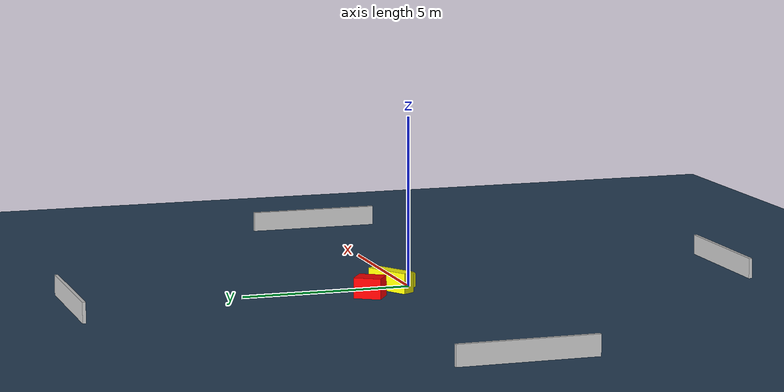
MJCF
<?xml version="1.0" ?>
<mujoco model="generated_environment">
  <option timestep="0.01" integrator="RK4" cone="elliptic"/>
  <default>
    <geom density="1"/>
  </default>
  <asset>
    <texture builtin="gradient" height="3072" name="skybox" rgb1="0.3 0.5 0.7" rgb2="0 0 0" type="skybox" width="512"/>
    <texture builtin="checker" height="300" name="groundplane" rgb1="0.2 0.3 0.4" rgb2="0.1 0.2 0.3" type="2d" width="300"/>
    <material name="groundplane" reflectance="0.2" texrepeat="5 5" texture="groundplane"/>
  </asset>
  <worldbody>
    <light dir="0 0 -1" directional="true" pos="0 0 1.5"/>
    <geom condim="3" friction="0.5 0.005 0.001" material="groundplane" name="floor" pos="0 0 0" size="0 0 0.05" type="plane"/>
    <body name="walls">
      <geom name="wall_1" condim="4" pos="-10.0 0.0 0.3" rgba="0.800000011920929 0.800000011920929 0.800000011920929 1.0" size="0.05 2.0 0.3" type="box"/>
      <geom name="wall_2" condim="4" pos="10.0 0.0 0.3" rgba="0.800000011920929 0.800000011920929 0.800000011920929 1.0" size="0.05 2.0 0.3" type="box"/>
      <geom name="wall_3" condim="4" pos="0.0 -10.0 0.3" rgba="0.800000011920929 0.800000011920929 0.800000011920929 1.0" size="2.0 0.05 0.3" type="box"/>
      <geom name="wall_4" condim="4" pos="0.0 10.0 0.3" rgba="0.800000011920929 0.800000011920929 0.800000011920929 1.0" size="2.0 0.05 0.3" type="box"/>
    </body>
    <body name="robot">
      <joint name="joint_x" type="slide" pos="0 0 0" axis="1 0 0"/>
      <joint name="joint_y" type="slide" pos="0 0 0" axis="0 1 0"/>
      <geom name="robot" type="cylinder" pos="0.0 0.0 0.2" size="0.2 0.2 0.0" mass="5.0" friction="1.0 0.005 0.0001" condim="4" rgba="1.0 1.0 0.0 1.0"/>
    </body>
    <body name="obstacle_1_movable">
      <geom name="obstacle_1_movable" condim="4" pos="-0.30513855912012583 0.6365140030180901 0.3" euler="0 0 210.69881583144266" friction="0.0 0.005 0.001" rgba="1.0 1.0 0.0 1.0" size="0.698976676937518 0.20111554241922147 0.3" type="box" mass="0.1"/>
      <joint type="free"/>
    </body>
    <body name="obstacle_2_static">
      <geom name="obstacle_2_static" condim="4" pos="-1.0486905582059682 1.5029945247343592 0.3" euler="0 0 57.301230692849074" friction="0.0 0.005 0.001" rgba="1.0 0.0 0.0 1.0" size="0.39950228477987304 0.31800205046056024 0.3" type="box"/>
    </body>
  </worldbody>
  <actuator>
    <motor name="actuator_x" joint="joint_x" gear="1" ctrlrange="-1 1"/>
    <motor name="actuator_y" joint="joint_y" gear="1" ctrlrange="-1 1"/>
  </actuator>
</mujoco>
